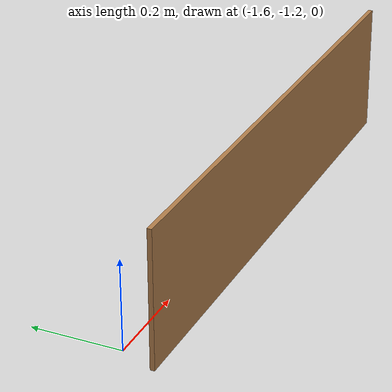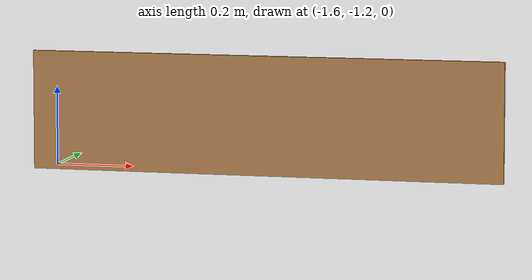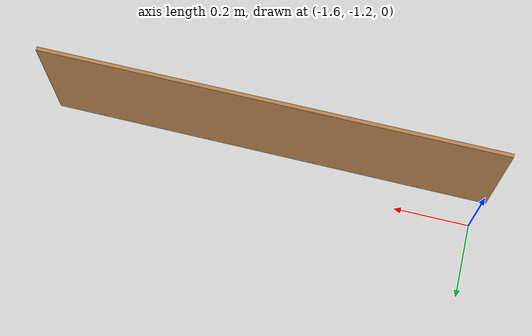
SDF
<?xml version='1.0'?>
<sdf version='1.7'>
  <model name='ParedMaderaTest'>
    <pose>-0.8175 -0.6425 0 0 -0 0</pose>
    <link name='Wall_0'>
      <collision name='Wall_0_Collision'>
        <geometry>
          <box>
            <size>1.2 0.01 0.3</size>
          </box>
        </geometry>
        <pose>0 0 0.15 0 -0 0</pose>
      </collision>
      <visual name='Wall_0_Visual'>
        <pose>0 0 0.15 0 -0 0</pose>
        <geometry>
          <box>
            <size>1.2 0.01 0.3</size>
          </box>
        </geometry>
        <material>
          <script>
            <uri>file://media/materials/scripts/gazebo.material</uri>
            <name>Gazebo/Wood</name>
          </script>
          <ambient>1 0.764706 0.305882 1</ambient>
        </material>
        <meta>
          <layer>0</layer>
        </meta>
      </visual>
      <pose>-0.2175 -0.6375 0 0 -0 0</pose>
    </link>
    <static>1</static>
  </model>
</sdf>
